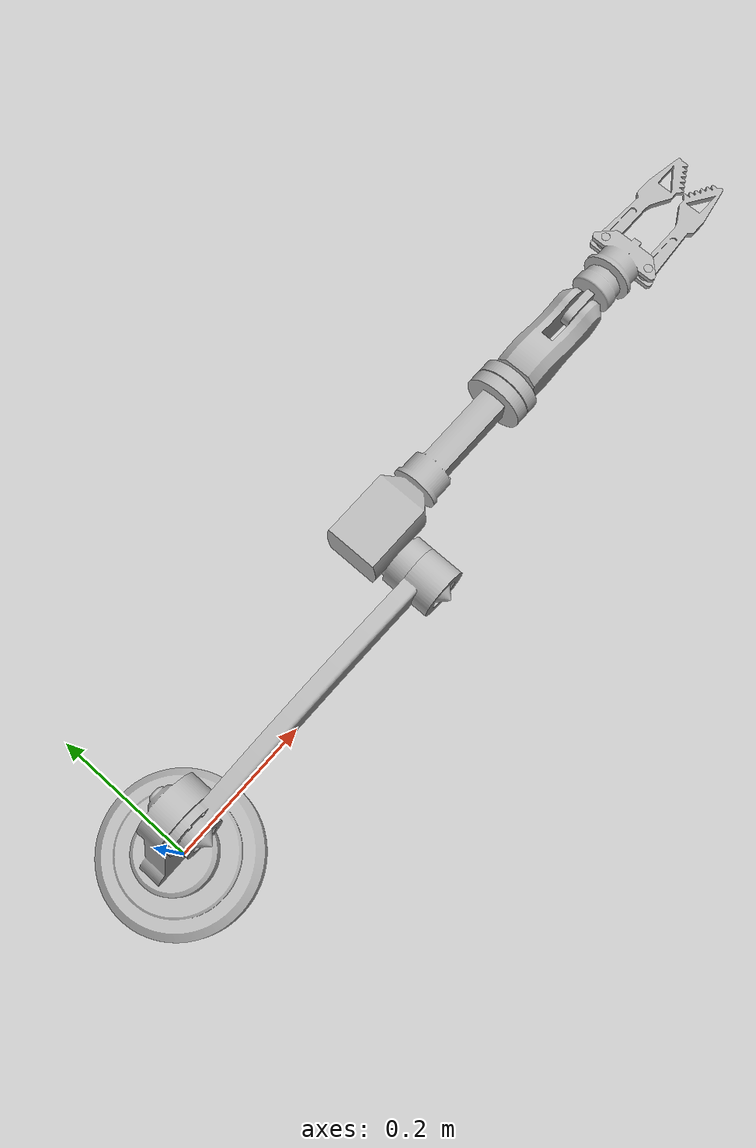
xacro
<?xml version="1.0" ?>
<robot name="manipulator" xmlns:xacro="http://www.ros.org/wiki/xacro">

<xacro:include filename="$(find manipulator_description)/urdf/materials.xacro" />
<xacro:include filename="$(find manipulator_description)/urdf/manipulator.trans" />
<xacro:include filename="$(find manipulator_description)/gazebo/manipulator_materials.gazebo" />
<xacro:include filename="$(find manipulator_description)/gazebo/manipulator_physics.gazebo" />
<xacro:include filename="$(find manipulator_description)/gazebo/manipulator_plugins.gazebo" />
<link name="dummy">
</link>
<link name="base_link">
  <inertial>
    <origin rpy="0 0 0" xyz="-1.1685831912934098e-14 0.0 0.022821785647159212"/>
    <mass value="11.021652857621229"/>
    <inertia ixx="0.027507" ixy="0.0" ixz="0.0" iyy="0.027507" iyz="0.0" izz="0.050904"/>
  </inertial>
  <visual>
    <origin rpy="0 0 0" xyz="0 0 0"/>
    <geometry>
      <mesh filename="package://manipulator_description/meshes/base_link.stl" scale="0.001 0.001 0.001"/>
    </geometry>
    <material name="silver_default"/>
  </visual>
  <collision>
    <origin rpy="0 0 0" xyz="0 0 0"/>
    <geometry>
      <mesh filename="package://manipulator_description/meshes/base_link.stl" scale="0.001 0.001 0.001"/>
    </geometry>
  </collision>
</link>

<link name="shoulder_1">
  <inertial>
    <origin rpy="0 0 0" xyz="0.01805715390479471 0.0004345371693901659 0.0809105077529908"/>
    <mass value="5.071516538575448"/>
    <inertia ixx="0.028654" ixy="-5.7e-05" ixz="-0.006552" iyy="0.031228" iyz="-0.000225" izz="0.00538"/>
  </inertial>
  <visual>
    <origin rpy="0 0 0" xyz="-0.0 -0.0 -0.06"/>
    <geometry>
      <mesh filename="package://manipulator_description/meshes/shoulder_1.stl" scale="0.001 0.001 0.001"/>
    </geometry>
    <material name="silver_default"/>
  </visual>
  <collision>
    <origin rpy="0 0 0" xyz="-0.0 -0.0 -0.06"/>
    <geometry>
      <mesh filename="package://manipulator_description/meshes/shoulder_1.stl" scale="0.001 0.001 0.001"/>
    </geometry>
  </collision>
</link>

<link name="arm_1">
  <inertial>
    <origin rpy="0 0 0" xyz="0.19413326329620828 -0.012606374294724804 0.005895047633386025"/>
    <mass value="3.2551390501910493"/>
    <inertia ixx="0.000929" ixy="0.001267" ixz="0.000355" iyy="0.056816" iyz="-5.2e-05" izz="0.056431"/>
  </inertial>
  <visual>
    <origin rpy="0 0 0" xyz="-0.04388 0.015 -0.243021"/>
    <geometry>
      <mesh filename="package://manipulator_description/meshes/arm_1.stl" scale="0.001 0.001 0.001"/>
    </geometry>
    <material name="silver_default"/>
  </visual>
  <collision>
    <origin rpy="0 0 0" xyz="-0.04388 0.015 -0.243021"/>
    <geometry>
      <mesh filename="package://manipulator_description/meshes/arm_1.stl" scale="0.001 0.001 0.001"/>
    </geometry>
  </collision>
</link>

<link name="forearm_1">
  <inertial>
    <origin rpy="0 0 0" xyz="0.06010304679536271 0.050453471476697584 0.025021670306494992"/>
    <mass value="5.686115943358722"/>
    <inertia ixx="0.004512" ixy="-0.001554" ixz="-0.001693" iyy="0.039696" iyz="-0.000726" izz="0.039705"/>
  </inertial>
  <visual>
    <origin rpy="0 0 0" xyz="-0.39388 0.015 -0.243021"/>
    <geometry>
      <mesh filename="package://manipulator_description/meshes/forearm_1.stl" scale="0.001 0.001 0.001"/>
    </geometry>
    <material name="silver_default"/>
  </visual>
  <collision>
    <origin rpy="0 0 0" xyz="-0.39388 0.015 -0.243021"/>
    <geometry>
      <mesh filename="package://manipulator_description/meshes/forearm_1.stl" scale="0.001 0.001 0.001"/>
    </geometry>
  </collision>
</link>

<link name="wrist_1">
  <inertial>
    <origin rpy="0 0 0" xyz="0.054203077066210636 -1.942890293094024e-16 3.750217997811056e-07"/>
    <mass value="2.3056348677467557"/>
    <inertia ixx="0.001117" ixy="-0.0" ixz="0.0" iyy="0.003766" iyz="0.0" izz="0.003645"/>
  </inertial>
  <visual>
    <origin rpy="0 0 0" xyz="-0.61488 -0.04 -0.273021"/>
    <geometry>
      <mesh filename="package://manipulator_description/meshes/wrist_1.stl" scale="0.001 0.001 0.001"/>
    </geometry>
    <material name="silver_default"/>
  </visual>
  <collision>
    <origin rpy="0 0 0" xyz="-0.61488 -0.04 -0.273021"/>
    <geometry>
      <mesh filename="package://manipulator_description/meshes/wrist_1.stl" scale="0.001 0.001 0.001"/>
    </geometry>
  </collision>
</link>

<link name="palm_1">
  <inertial>
    <origin rpy="0 0 0" xyz="0.042192924671413 -0.005000000000069643 3.750217997811056e-07"/>
    <mass value="0.47041814660861725"/>
    <inertia ixx="0.000112" ixy="0.0" ixz="-0.0" iyy="0.000186" iyz="0.0" izz="0.000186"/>
  </inertial>
  <visual>
    <origin rpy="0 0 0" xyz="-0.71988 -0.0475 -0.273021"/>
    <geometry>
      <mesh filename="package://manipulator_description/meshes/palm_1.stl" scale="0.001 0.001 0.001"/>
    </geometry>
    <material name="silver_default"/>
  </visual>
  <collision>
    <origin rpy="0 0 0" xyz="-0.71988 -0.0475 -0.273021"/>
    <geometry>
      <mesh filename="package://manipulator_description/meshes/palm_1.stl" scale="0.001 0.001 0.001"/>
    </geometry>
  </collision>
</link>

<link name="knuckle_1">
  <inertial>
    <origin rpy="0 0 0" xyz="0.01882931216128858 6.814973533414426e-06 3.750217997811056e-07"/>
    <mass value="0.6016545430827455"/>
    <inertia ixx="0.000236" ixy="-0.0" ixz="0.0" iyy="0.000202" iyz="-0.0" izz="0.000259"/>
  </inertial>
  <visual>
    <origin rpy="0 0 0" xyz="-0.78388 -0.0425 -0.273021"/>
    <geometry>
      <mesh filename="package://manipulator_description/meshes/knuckle_1.stl" scale="0.001 0.001 0.001"/>
    </geometry>
    <material name="silver_default"/>
  </visual>
  <collision>
    <origin rpy="0 0 0" xyz="-0.78388 -0.0425 -0.273021"/>
    <geometry>
      <mesh filename="package://manipulator_description/meshes/knuckle_1.stl" scale="0.001 0.001 0.001"/>
    </geometry>
  </collision>
</link>

<link name="finger_1_1">
  <inertial>
    <origin rpy="0 0 0" xyz="0.06678160147364631 -0.0037963435816736196 7.809069139602665e-05"/>
    <mass value="0.17058341058230234"/>
    <inertia ixx="1.2e-05" ixy="1.8e-05" ixz="-1e-06" iyy="0.000296" iyz="0.0" izz="0.000305"/>
  </inertial>
  <visual>
    <origin rpy="0 0 0" xyz="-0.81888 -0.0725 -0.273021"/>
    <geometry>
      <mesh filename="package://manipulator_description/meshes/finger_1_1.stl" scale="0.001 0.001 0.001"/>
    </geometry>
    <material name="silver_default"/>
  </visual>
  <collision>
    <origin rpy="0 0 0" xyz="-0.81888 -0.0725 -0.273021"/>
    <geometry>
      <mesh filename="package://manipulator_description/meshes/finger_1_1.stl" scale="0.001 0.001 0.001"/>
    </geometry>
  </collision>
</link>

<link name="finger_2_1">
  <inertial>
    <origin rpy="0 0 0" xyz="0.06678160147364598 0.003796343581673269 -7.734064779657546e-05"/>
    <mass value="0.17058341058230234"/>
    <inertia ixx="1.2e-05" ixy="-1.8e-05" ixz="1e-06" iyy="0.000296" iyz="0.0" izz="0.000305"/>
  </inertial>
  <visual>
    <origin rpy="0 0 0" xyz="-0.81888 -0.0125 -0.273021"/>
    <geometry>
      <mesh filename="package://manipulator_description/meshes/finger_2_1.stl" scale="0.001 0.001 0.001"/>
    </geometry>
    <material name="silver_default"/>
  </visual>
  <collision>
    <origin rpy="0 0 0" xyz="-0.81888 -0.0125 -0.273021"/>
    <geometry>
      <mesh filename="package://manipulator_description/meshes/finger_2_1.stl" scale="0.001 0.001 0.001"/>
    </geometry>
  </collision>
</link>

<joint name="dummy_joint" type="fixed">
  <parent link="dummy"/>
  <child link="base_link"/>
</joint>

<joint name="base_joint" type="continuous">
  <origin rpy="0 0 0" xyz="0.0 0.0 0.06"/>
  <parent link="base_link"/>
  <child link="shoulder_1"/>
  <axis xyz="0.0 0.0 1.0"/>
</joint>

<joint name="shoulder_joint" type="continuous">
  <origin rpy="0 0 0" xyz="0.04388 -0.015 0.183021"/>
  <parent link="shoulder_1"/>
  <child link="arm_1"/>
  <axis xyz="0.0 -1.0 0.0"/>
</joint>

<joint name="elbow_joint" type="continuous">
  <origin rpy="0 0 0" xyz="0.35 0.0 0.0"/>
  <parent link="arm_1"/>
  <child link="forearm_1"/>
  <axis xyz="0.0 1.0 0.0"/>
</joint>

<joint name="wrist_joint" type="continuous">
  <origin rpy="0 0 0" xyz="0.221 0.055 0.03"/>
  <parent link="forearm_1"/>
  <child link="wrist_1"/>
  <axis xyz="-1.0 -0.0 0.0"/>
</joint>

<joint name="hand_joint" type="continuous">
  <origin rpy="0 0 0" xyz="0.105 0.0075 0.0"/>
  <parent link="wrist_1"/>
  <child link="palm_1"/>
  <axis xyz="0.0 1.0 -0.0"/>
</joint>

<joint name="palm_joint" type="continuous">
  <origin rpy="0 0 0" xyz="0.064 -0.005 0.0"/>
  <parent link="palm_1"/>
  <child link="knuckle_1"/>
  <axis xyz="1.0 -0.0 -0.0"/>
</joint>

<joint name="finger_1_joint" type="continuous">
  <origin rpy="0 0 0" xyz="0.035 0.03 0.0"/>
  <parent link="knuckle_1"/>
  <child link="finger_1_1"/>
  <axis xyz="-0.0 -0.0 -1.0"/>
</joint>

<joint name="finger_2_joint" type="continuous">
  <origin rpy="0 0 0" xyz="0.035 -0.03 0.0"/>
  <parent link="knuckle_1"/>
  <child link="finger_2_1"/>
  <axis xyz="0.0 0.0 1.0"/>
</joint>

</robot>

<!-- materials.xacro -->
<robot name="manipulator" xmlns:xacro="http://www.ros.org/wiki/xacro" >

<material name="silver_default">
  <color rgba="0.700 0.700 0.700 1.000"/>
</material>

</robot>

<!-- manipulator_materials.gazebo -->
<robot name="manipulator" xmlns:xacro="http://www.ros.org/wiki/xacro" >

<xacro:property name="body_color" value="Gazebo/Silver" />

<gazebo reference="base_link">
  <material>${body_color}</material>
</gazebo>

<gazebo reference="shoulder_1">
  <material>${body_color}</material>
</gazebo>

<gazebo reference="arm_1">
  <material>${body_color}</material>
</gazebo>

<gazebo reference="forearm_1">
  <material>${body_color}</material>
</gazebo>

<gazebo reference="wrist_1">
  <material>${body_color}</material>
</gazebo>

<gazebo reference="palm_1">
  <material>${body_color}</material>
</gazebo>

<gazebo reference="knuckle_1">
  <material>${body_color}</material>
</gazebo>

<gazebo reference="finger_1_1">
  <material>${body_color}</material>
</gazebo>

<gazebo reference="finger_2_1">
  <material>${body_color}</material>
</gazebo>

</robot>
